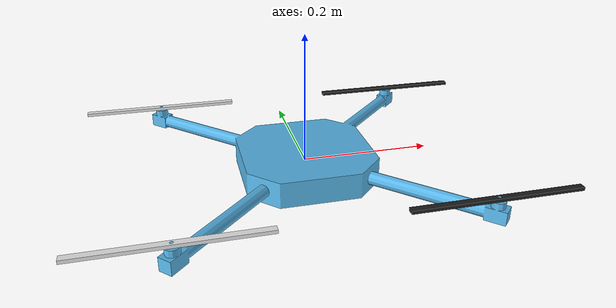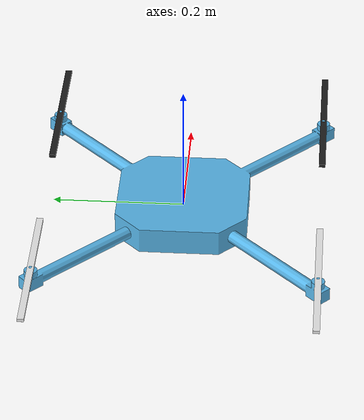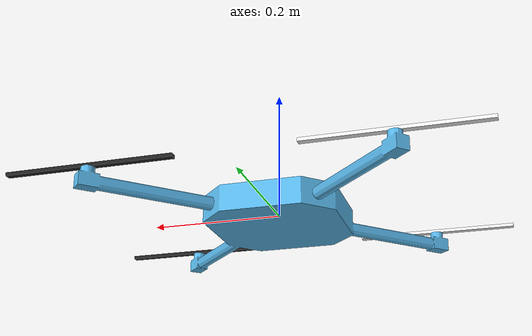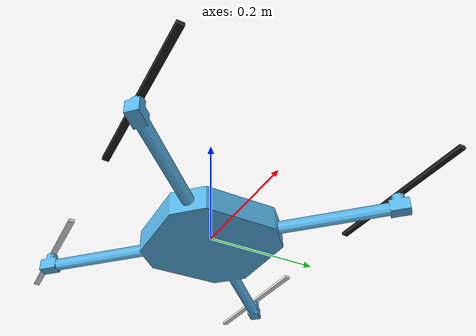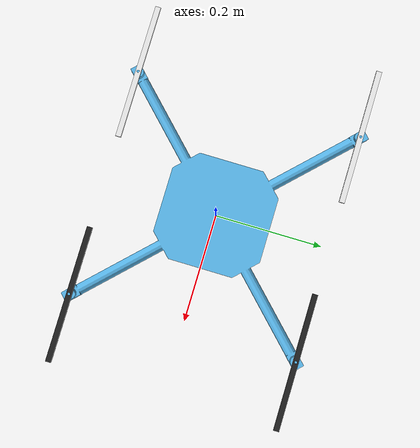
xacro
<?xml version="1.0"?>
<!--
  description :
  time: 2020/01/07
  author：lkw_nuaa@163.com
-->

<robot name="xfly"
    xmlns:xacro="http://ros.org/wiki/xacro">
    <!-- Properties -->
    <xacro:property name="namespace" value="xfly" />
    <xacro:property name="rotor_velocity_slowdown_sim" value="10" />

    <!-- 机械参数 -->
    <xacro:property name="use_mesh_file" value="true" />
    <xacro:property name="body_mesh_file" value="package://xfly/meshes/base_link.STL" />
    <xacro:property name="rotor_mesh_file" value="package://xfly/meshes/prop1_Link.STL" />
    <xacro:property name="body_mass" value="1.8423" />
    <!-- [kg] -->

    <xacro:property name="rotor_mass" value="0.0063224" />
    <!-- [kg] -->

    <xacro:property name="body_inertia">
        <inertia ixx="0.21231" ixy="0" ixz="0" iyy="0.21231" iyz="0" izz="0.42117" />
        <!-- [kg m^2] [kg m^2] [kg m^2] [kg m^2] [kg m^2] [kg m^2] -->
    </xacro:property>

    <!-- 升力 参数-->
    <xacro:property name="motor_constant" value="1.7088e-05" />
    <!-- [kg .m/s^2] -->
    <xacro:property name="moment_constant" value="0.016" />
    <xacro:property name="time_constant_up" value="0.0125" />
    <xacro:property name="time_constant_down" value="0.025" />
    <xacro:property name="max_rot_velocity" value="838" />
    <!-- [rad/s] -->
    <xacro:property name="rotor_drag_coefficient" value="0" />
    <xacro:property name="rolling_moment_coefficient" value="0" />

    <!-- Included URDF Files -->
    <xacro:include filename="$(find xfly)/urdf/xfly_drv.xacro" />

    <!-- Instantiate tiltable_rotors_base once -->
    <xacro:xfly_base_macro robot_namespace="${namespace}" mass="${body_mass}" mesh_file="${body_mesh_file}">
        <origin xyz="0 0 0" rpy="0 0 0" />
        <xacro:insert_block name="body_inertia" />
    </xacro:xfly_base_macro>

    <xacro:rotor_macro robot_namespace="${namespace}" suffix="0" mass="${rotor_mass}" meshfile="${rotor_mesh_file}" direction="ccw" motor_constant="${motor_constant}" moment_constant="${moment_constant}" time_constant_up="${time_constant_up}" time_constant_down="${time_constant_down}" max_rot_velocity="${max_rot_velocity}" rotor_drag_coefficient="${rotor_drag_coefficient}" rolling_moment_coefficient="${rolling_moment_coefficient}" rotor_velocity_slowdown_sim="${rotor_velocity_slowdown_sim}" color="Black">
        <origin xyz="0 0 0" rpy="0 0 0" />
        <!-- link_origin -->
        <origin xyz="0.21081 -0.21081 0.0225" rpy="0 0 0" />
        <!-- joint_origin -->
    </xacro:rotor_macro>

    <xacro:rotor_macro robot_namespace="${namespace}" suffix="1" mass="${rotor_mass}" meshfile="${rotor_mesh_file}" direction="ccw" motor_constant="${motor_constant}" moment_constant="${moment_constant}" time_constant_up="${time_constant_up}" time_constant_down="${time_constant_down}" max_rot_velocity="${max_rot_velocity}" rotor_drag_coefficient="${rotor_drag_coefficient}" rolling_moment_coefficient="${rolling_moment_coefficient}" rotor_velocity_slowdown_sim="${rotor_velocity_slowdown_sim}" color="White">
        <origin xyz="0 0 0" rpy="0 0 0" />
        <!-- link_origin -->
        <origin xyz="-0.21081 0.21081 0.0225" rpy="0 0 0" />
        <!-- joint_origin -->
    </xacro:rotor_macro>

    <xacro:rotor_macro robot_namespace="${namespace}" suffix="2" mass="${rotor_mass}" meshfile="${rotor_mesh_file}" direction="cw" motor_constant="${motor_constant}" moment_constant="${moment_constant}" time_constant_up="${time_constant_up}" time_constant_down="${time_constant_down}" max_rot_velocity="${max_rot_velocity}" rotor_drag_coefficient="${rotor_drag_coefficient}" rolling_moment_coefficient="${rolling_moment_coefficient}" rotor_velocity_slowdown_sim="${rotor_velocity_slowdown_sim}" color="Black">
        <origin xyz="0 0 0" rpy="0 0 0" />
        <!-- link_origin -->
        <origin xyz="0.21081 0.21081 0.0225" rpy="0 0 0" />
        <!-- joint_origin -->
    </xacro:rotor_macro>

    <xacro:rotor_macro robot_namespace="${namespace}" suffix="3" mass="${rotor_mass}" meshfile="${rotor_mesh_file}" direction="cw" motor_constant="${motor_constant}" moment_constant="${moment_constant}" time_constant_up="${time_constant_up}" time_constant_down="${time_constant_down}" max_rot_velocity="${max_rot_velocity}" rotor_drag_coefficient="${rotor_drag_coefficient}" rolling_moment_coefficient="${rolling_moment_coefficient}" rotor_velocity_slowdown_sim="${rotor_velocity_slowdown_sim}" color="White">
        <origin xyz="0 0 0" rpy="0 0 0" />
        <!-- link_origin -->
        <origin xyz="-0.21081 -0.21081 0.0225" rpy="0 0 0" />
        <!-- joint_origin -->
    </xacro:rotor_macro>

</robot>

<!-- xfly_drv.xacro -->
<!--
  description :
  time: 2020/01/07
  author：lkw_nuaa@163.com
-->

<robot xmlns:xacro="http://ros.org/wiki/xacro">

    <xacro:macro name="xfly_base_macro" params="robot_namespace mass  mesh_file  *origin *inertia">
        <link name="${robot_namespace}/base_link">
        </link>

        <joint name="${robot_namespace}/base_joint" type="fixed">
            <origin xyz="0 0 0" rpy="0 0 0" />
            <parent link="${robot_namespace}/base_link" />
            <child link="${robot_namespace}/base_link_inertia" />
        </joint>

        <link name="${robot_namespace}/base_link_inertia">
            <inertial>
                <mass value="${mass}" />
                <!-- [kg] -->
                <xacro:insert_block name="origin" />
                <xacro:insert_block name="inertia" />
            </inertial>

            <visual>
                <xacro:insert_block name="origin" />
                <geometry>
                    <mesh filename="${mesh_file}" scale="1 1 1" />
                </geometry>
            </visual>

            <collision>
                <xacro:insert_block name="origin" />
                <geometry>
                    <mesh filename="${mesh_file}" scale="1 1 1" />
                </geometry>
            </collision>
        </link>

        <gazebo reference="${robot_namespace}/base_link">
            <material>Gazebo/Red</material>
        </gazebo>
    </xacro:macro>

    <!-- rotor link and joint-->
    <xacro:macro name="rotor_macro" params="robot_namespace suffix mass meshfile direction motor_constant moment_constant
        time_constant_up time_constant_down max_rot_velocity rotor_drag_coefficient rolling_moment_coefficient rotor_velocity_slowdown_sim
        color *link_origin *joint_origin">
        <link name="${robot_namespace}/rotor${suffix}">
            <inertial>
                <xacro:insert_block name="link_origin" />
                <mass value="${mass}" />
                <inertia ixx="2.57E-07" ixy="0" ixz="0" iyy="4.8209E-06" iyz="0" izz="4.7992E-05" />
            </inertial>

            <visual>
                <origin xyz="0 0 0" rpy="0 0 0" />
                <geometry>
                    <mesh filename="${meshfile}" />
                </geometry>
            </visual>

            <collision>
                <origin xyz="0 0 0" rpy="0 0 0" />
                <geometry>
                    <mesh filename="${meshfile}" />
                </geometry>
            </collision>
        </link>

        <joint name="${robot_namespace}/rotor_r${suffix}" type="continuous">
            <xacro:insert_block name="joint_origin" />
            <parent link="${robot_namespace}/base_link" />
            <child link="${robot_namespace}/rotor${suffix}" />
            <axis xyz="0 0 1" />
        </joint>

        <gazebo>
            <plugin name="${robot_namespace}_motor_model_${suffix}" filename="librotors_gazebo_motor_model.so">
                <robotNamespace>${robot_namespace}</robotNamespace>
                <jointName>${robot_namespace}/rotor_r${suffix}</jointName>
                <linkName>${robot_namespace}/rotor${suffix}</linkName>
                <motorType>velocity</motorType>
                <turningDirection>${direction}</turningDirection>
                <timeConstantUp>${time_constant_up}</timeConstantUp>
                <timeConstantDown>${time_constant_down}</timeConstantDown>
                <maxRotVelocity>${max_rot_velocity}</maxRotVelocity>
                <motorConstant>${motor_constant}</motorConstant>
                <momentConstant>${moment_constant}</momentConstant>
                <commandSubTopic>gazebo/command/motor_speed</commandSubTopic>
                <motorNumber>${suffix}</motorNumber>
                <rotorDragCoefficient>${rotor_drag_coefficient}</rotorDragCoefficient>
                <rollingMomentCoefficient>${rolling_moment_coefficient}</rollingMomentCoefficient>
                <motorSpeedPubTopic>motor_speed/${suffix}</motorSpeedPubTopic>
                <rotorVelocitySlowdownSim>${rotor_velocity_slowdown_sim}</rotorVelocitySlowdownSim>
            </plugin>
        </gazebo>
        <gazebo reference="${robot_namespace}/rotor${suffix}">
            <material>Gazebo/${color}</material>
        </gazebo>
    </xacro:macro>

</robot>
